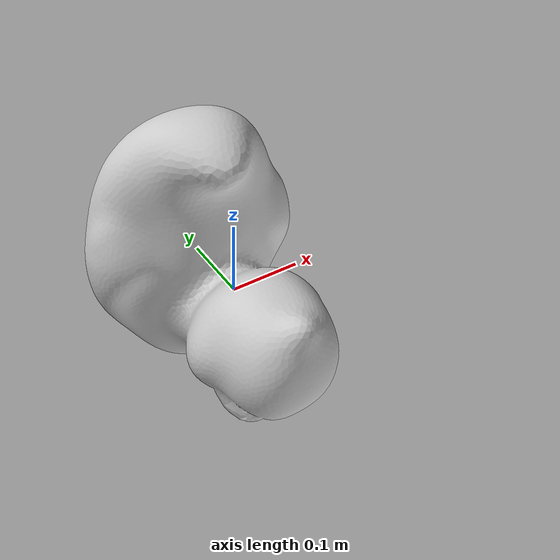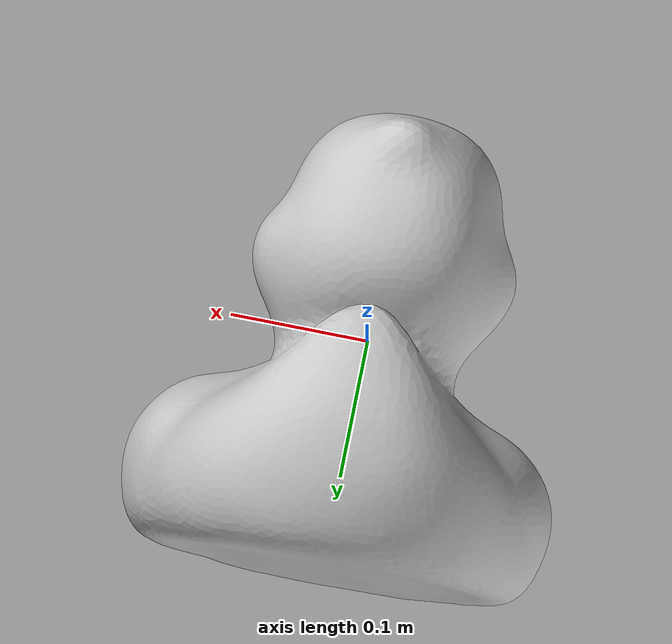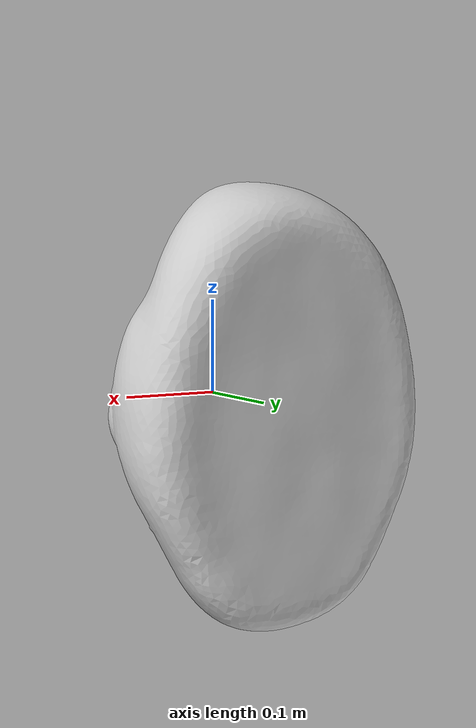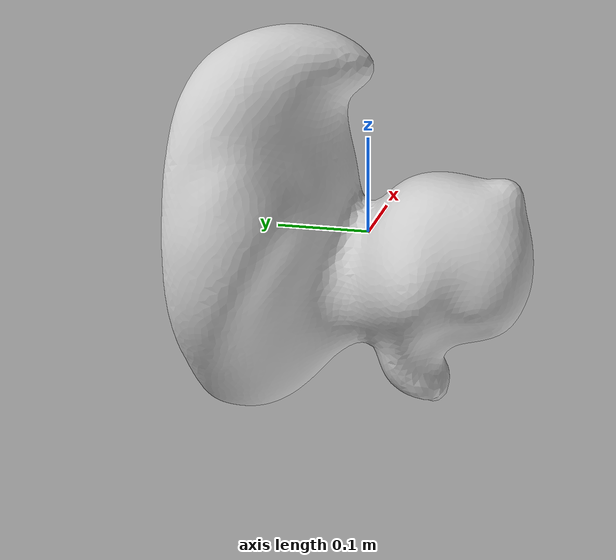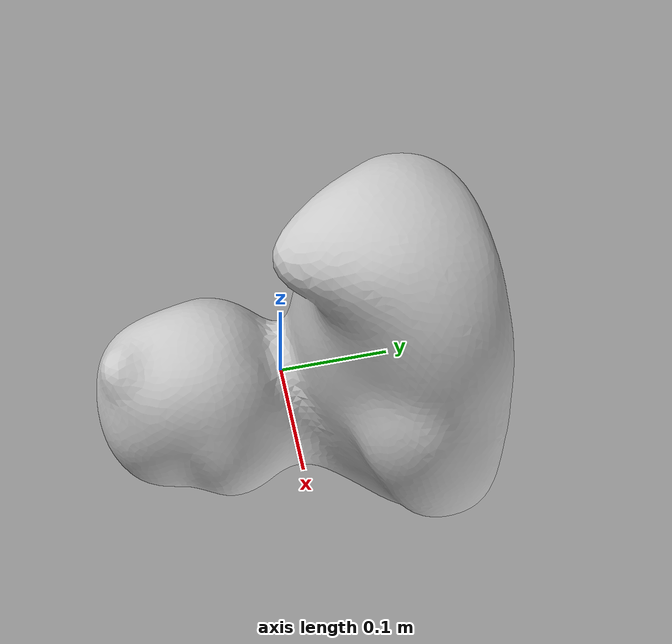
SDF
<?xml version='1.0'?>
<sdf version='1.6'>
  <model name='duck'>
    <static>false</static>
    <link name="base_link">
      <visual name="visual">
        <pose>0 0 0 1.5708 0 0</pose>
        <geometry>
          <mesh>
            <uri>model://duck/meshes/duck.dae</uri>
            <scale>4 4 4</scale>
          </mesh>
        </geometry>
      </visual>
      <collision name="collision">
        <pose>0 0 0 0 0 0</pose>
        <geometry>
          <mesh>
            <uri>model://duck/meshes/duck_collision.stl</uri>
            <scale>4 4 4</scale>
          </mesh>
        </geometry>
      </collision>
      <inertial>
        <pose>0 0 0 0 0 0</pose>
        <mass>400</mass>
        <inertia>
          <ixx>266</ixx>
          <ixy>0</ixy>
          <iyy>266</iyy>
          <iyz>0</iyz>
          <izz>266</izz>
        </inertia>
      </inertial>
    </link>

  </model>
</sdf>
